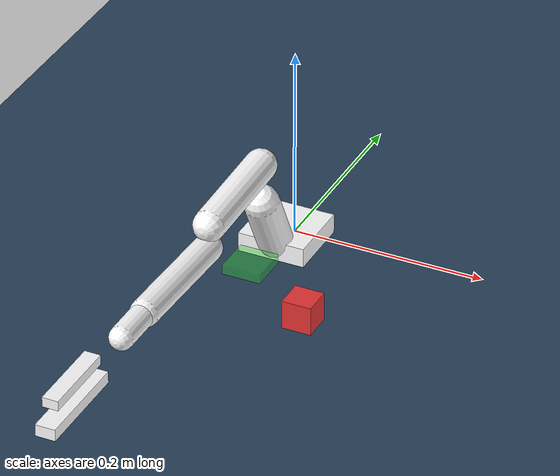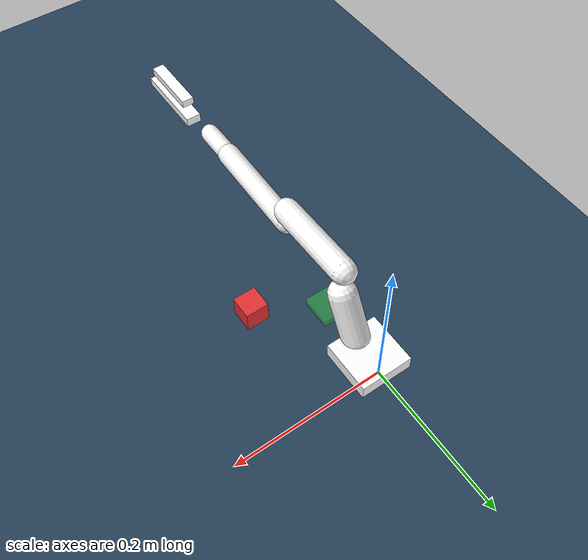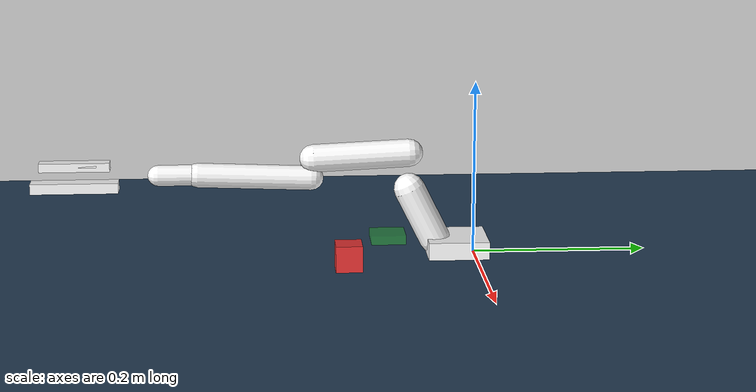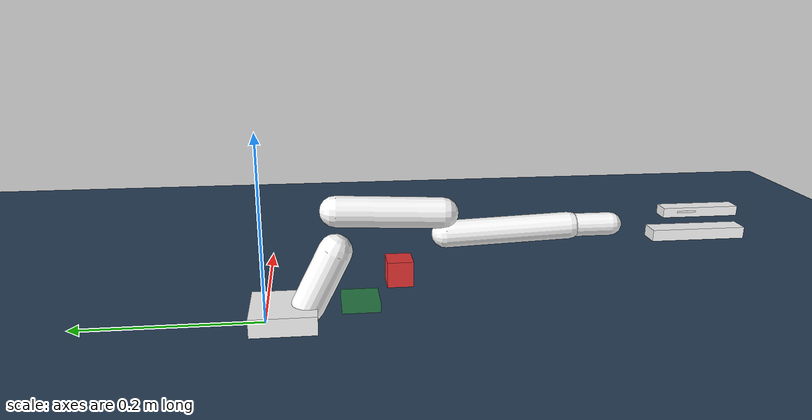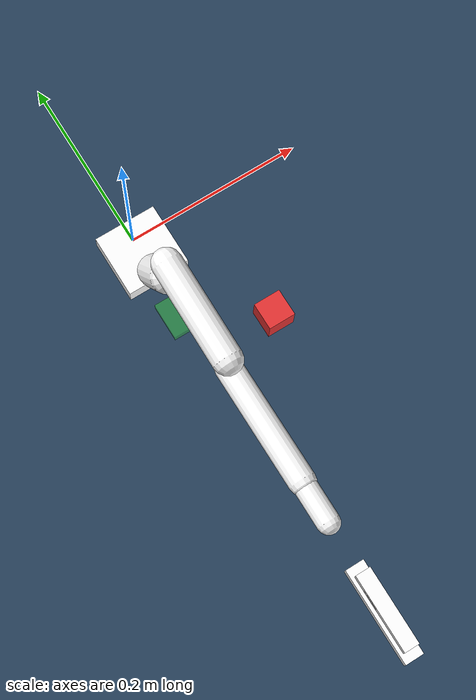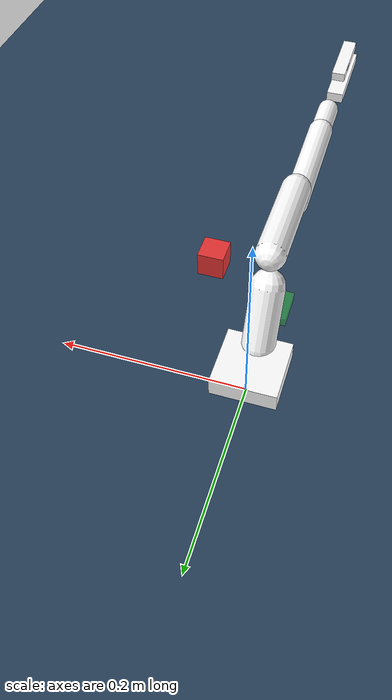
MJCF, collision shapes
<mujoco model="so_arm100 pick-and-place (MJX)">
  <include file="so_arm100_mjx.xml"/>

  <statistic center="0.1 -0.01 0.05" extent="0.5"/>

  <visual>
    <headlight diffuse="0.6 0.6 0.6" ambient="0.3 0.3 0.3" specular="0 0 0"/>
    <rgba haze="0.15 0.25 0.35 1"/>
    <global azimuth="45" elevation="-20"/>
  </visual>

  <asset>
    <texture type="skybox" builtin="gradient" rgb1="0.3 0.5 0.7" rgb2="0 0 0" width="512" height="3072"/>
    <texture type="2d" name="groundplane" builtin="checker" mark="edge" rgb1="0.2 0.3 0.4" rgb2="0.1 0.2 0.3"
      markrgb="0.8 0.8 0.8" width="300" height="300"/>
    <material name="groundplane" texture="groundplane" texuniform="true" texrepeat="5 5" reflectance="0.2"/>
    <material name="object_mat" rgba="0.9 0.2 0.2 1"/>
    <material name="target_mat" rgba="0.2 0.9 0.2 0.4"/>
  </asset>

  <worldbody>
    <light pos="0 0 1.5" dir="0 0 -1" directional="true"/>
    <geom name="floor" size="0 0 0.05" type="plane" material="groundplane"/>

    <body name="pick_object" pos="0.08 -0.15 0.02">
      <freejoint name="object_joint"/>
      <geom name="object_geom" type="box" size="0.015 0.015 0.015"
            material="object_mat" mass="0.05" condim="4" friction="1 0.5 0.01"/>
    </body>

    <body name="place_target" pos="0.0 -0.10 0.02" mocap="true">
      <geom name="place_target_geom" type="box" size="0.02 0.02 0.005"
            material="target_mat" contype="0" conaffinity="0"/>
    </body>
  </worldbody>
</mujoco>

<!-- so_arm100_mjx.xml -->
<mujoco model="so_arm100_mjx">
  <compiler angle="radian" meshdir="assets/"/>

  <option cone="elliptic" impratio="10"/>

  <asset>
    <material name="white" rgba="1 1 1 1"/>
    <material name="black" rgba="0.1 0.1 0.1 1"/>

    <mesh name="Base" file="Base.stl"/>
    <mesh name="Base_Motor" file="Base_Motor.stl"/>
    <mesh name="Rotation_Pitch" file="Rotation_Pitch.stl"/>
    <mesh name="Rotation_Pitch_Motor" file="Rotation_Pitch_Motor.stl"/>
    <mesh name="Upper_Arm" file="Upper_Arm.stl"/>
    <mesh name="Upper_Arm_Motor" file="Upper_Arm_Motor.stl"/>
    <mesh name="Lower_Arm" file="Lower_Arm.stl"/>
    <mesh name="Lower_Arm_Motor" file="Lower_Arm_Motor.stl"/>
    <mesh name="Wrist_Pitch_Roll" file="Wrist_Pitch_Roll.stl"/>
    <mesh name="Wrist_Pitch_Roll_Motor" file="Wrist_Pitch_Roll_Motor.stl"/>
    <mesh name="Fixed_Jaw" file="Fixed_Jaw.stl"/>
    <mesh name="Fixed_Jaw_Motor" file="Fixed_Jaw_Motor.stl"/>
    <mesh name="Moving_Jaw" file="Moving_Jaw.stl"/>
  </asset>

  <default>
    <default class="so_arm100">
      <joint frictionloss="0.1" armature="0.1"/>
      <position kp="50" dampratio="1" forcerange="-3.5 3.5"/>
      <default class="Rotation">
        <joint axis="0 1 0" range="-1.57 1.57"/>
      </default>
      <default class="Pitch">
        <joint axis="1 0 0" range="-3.14 0"/>
      </default>
      <default class="Elbow">
        <joint axis="1 0 0" range="0.07 3.07"/>
      </default>
      <default class="Wrist_Pitch">
        <joint axis="1 0 0" range="-1.57 1.57"/>
      </default>
      <default class="Wrist_Roll">
        <joint axis="0 1 0" range="-1.57 1.57"/>
      </default>
      <default class="Jaw">
        <joint axis="0 0 1" range="-1.57 1.87"/>
      </default>
      <default class="visual">
        <geom type="mesh" contype="0" conaffinity="0" density="0" group="2" material="white"/>
        <default class="motor_visual">
          <geom material="black"/>
        </default>
      </default>
      <default class="collision">
        <geom group="3" material="white"/>
        <default class="finger_collision">
          <geom type="box" solimp="2 1 0.01" solref="0.01 1" friction="1 0.005 0.0001"/>
        </default>
      </default>
    </default>
  </default>

  <worldbody>
    <body name="Base" childclass="so_arm100">
      <geom type="mesh" mesh="Base" class="visual"/>
      <geom type="mesh" mesh="Base_Motor" class="motor_visual"/>
      <geom name="base_col" class="collision" type="box" size="0.035 0.035 0.02" pos="0 -0.02 0"/>
      <body name="Rotation_Pitch" pos="0 -0.0452 0.0165" quat="0.707105 0.707108 0 0">
        <inertial pos="-9.07886e-05 0.0590972 0.031089" quat="0.363978 0.441169 -0.623108 0.533504" mass="0.119226"
          diaginertia="5.94278e-05 5.89975e-05 3.13712e-05"/>
        <joint name="Rotation" class="Rotation"/>
        <geom type="mesh" mesh="Rotation_Pitch" class="visual"/>
        <geom type="mesh" mesh="Rotation_Pitch_Motor" class="motor_visual"/>
        <geom name="rot_col" class="collision" type="capsule" size="0.018" fromto="0 0 0 0 0.06 0.03"/>
        <body name="Upper_Arm" pos="0 0.1025 0.0306" euler="1.57079 0 0">
          <inertial pos="-1.72052e-05 0.0701802 0.00310545" quat="0.50104 0.498994 -0.493562 0.50632" mass="0.162409"
            diaginertia="0.000213312 0.000167164 7.01522e-05"/>
          <joint name="Pitch" class="Pitch"/>
          <geom type="mesh" mesh="Upper_Arm" class="visual"/>
          <geom type="mesh" mesh="Upper_Arm_Motor" class="motor_visual"/>
          <geom name="upper_col" class="collision" type="capsule" size="0.016" fromto="0 0 0 0 0.11 0.005"/>
          <body name="Lower_Arm" pos="0 0.11257 0.028" euler="-1.57079 0 0">
            <inertial pos="-0.00339604 0.00137796 0.0768007" quat="0.701995 0.0787996 0.0645626 0.704859"
              mass="0.147968" diaginertia="0.000138803 0.000107748 4.84242e-05"/>
            <joint name="Elbow" class="Elbow"/>
            <geom type="mesh" mesh="Lower_Arm" class="visual"/>
            <geom type="mesh" mesh="Lower_Arm_Motor" class="motor_visual"/>
            <geom name="lower_col" class="collision" type="capsule" size="0.014" fromto="0 0 0 0 0.005 0.13"/>
            <body name="Wrist_Pitch_Roll" pos="0 0.0052 0.1349" euler="-1.57079 0 0">
              <inertial pos="-0.00852653 -0.0352279 -2.34622e-05" quat="-0.0522806 0.705235 0.0549524 0.704905"
                mass="0.0661321" diaginertia="3.45403e-05 2.39041e-05 1.94704e-05"/>
              <joint name="Wrist_Pitch" class="Wrist_Pitch"/>
              <geom type="mesh" mesh="Wrist_Pitch_Roll" class="visual"/>
              <geom type="mesh" mesh="Wrist_Pitch_Roll_Motor" class="motor_visual"/>
              <geom name="wrist_col" class="collision" type="capsule" size="0.012" fromto="0 0 0 0 -0.04 0"/>
              <body name="Fixed_Jaw" pos="0 -0.0601 0" euler="0 1.57079 0">
                <inertial pos="0.00552377 -0.0280167 0.000483583" quat="0.41836 0.620891 -0.350644 0.562599"
                  mass="0.0929859" diaginertia="5.03136e-05 4.64098e-05 2.72961e-05"/>
                <joint name="Wrist_Roll" class="Wrist_Roll"/>
                <geom type="mesh" mesh="Fixed_Jaw" class="visual"/>
                <geom type="mesh" mesh="Fixed_Jaw_Motor" class="motor_visual"/>
                <geom name="fixed_jaw_col" class="collision" type="box" size="0.006 0.05 0.01" pos="0.012 -0.075 0"/>
                <geom class="finger_collision" name="fixed_jaw_pad_1" size="0.001 0.005 0.004" pos="0.0089 -0.1014 0"/>
                <geom class="finger_collision" name="fixed_jaw_pad_2" size="0.001 0.005 0.006" pos="0.0109 -0.0914 0"/>
                <geom class="finger_collision" name="fixed_jaw_pad_3" size="0.001 0.01 0.007" pos="0.0126 -0.0768 0"/>
                <geom class="finger_collision" name="fixed_jaw_pad_4" size="0.001 0.01 0.008" pos="0.0143 -0.0572 0"/>
                <body name="Moving_Jaw" pos="-0.0202 -0.0244 0" quat="1.34924e-11 -3.67321e-06 1 -3.67321e-06">
                  <inertial pos="-0.00161745 -0.0303473 0.000449646" quat="0.696562 0.716737 -0.0239844 -0.0227026"
                    mass="0.0202444" diaginertia="1.11265e-05 8.99651e-06 2.99548e-06"/>
                  <joint name="Jaw" class="Jaw"/>
                  <geom type="mesh" mesh="Moving_Jaw" class="visual"/>
                  <geom name="moving_jaw_col" class="collision" type="box" size="0.005 0.04 0.008" pos="-0.008 -0.05 0"/>
                  <geom class="finger_collision" name="moving_jaw_pad_1" size="0.001 0.005 0.004" pos="-0.0113 -0.077 0"/>
                  <geom class="finger_collision" name="moving_jaw_pad_2" size="0.001 0.005 0.006" pos="-0.0093 -0.067 0"/>
                  <geom class="finger_collision" name="moving_jaw_pad_3" size="0.001 0.01 0.006" pos="-0.0073 -0.055 0"/>
                  <geom class="finger_collision" name="moving_jaw_pad_4" size="0.001 0.01 0.008" pos="-0.0073 -0.035 0"/>
                </body>
              </body>
            </body>
          </body>
        </body>
      </body>
    </body>
  </worldbody>

  <actuator>
    <position class="Rotation" name="Rotation" joint="Rotation" inheritrange="1"/>
    <position class="Pitch" name="Pitch" joint="Pitch" inheritrange="1"/>
    <position class="Elbow" name="Elbow" joint="Elbow" inheritrange="1"/>
    <position class="Wrist_Pitch" name="Wrist_Pitch" joint="Wrist_Pitch" inheritrange="1"/>
    <position class="Wrist_Roll" name="Wrist_Roll" joint="Wrist_Roll" inheritrange="1"/>
    <position class="Jaw" name="Jaw" joint="Jaw" inheritrange="1"/>
  </actuator>

  <contact>
    <exclude body1="Base" body2="Rotation_Pitch"/>
  </contact>

  <keyframe>
    <key name="home" qpos="0 -1.57 1.57 1.57 -1.57 0" ctrl="0 -1.57 1.57 1.57 -1.57 0"/>
    <key name="rest" qpos="0 -3.32 3.11 1.18 0 -0.174" ctrl="0 -3.32 3.11 1.18 0 -0.174"/>
  </keyframe>
</mujoco>
